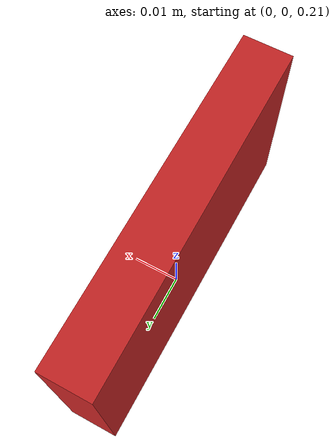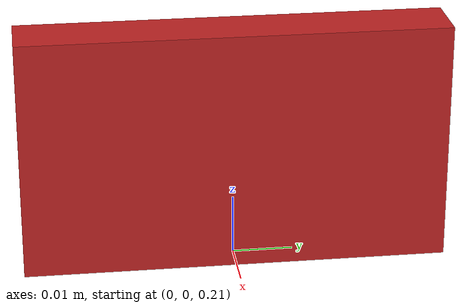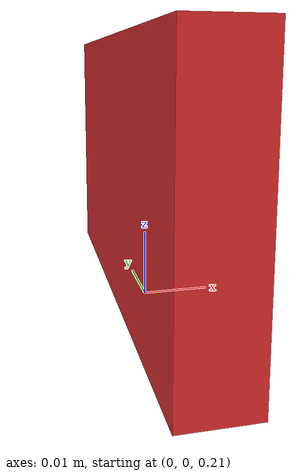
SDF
<?xml version='1.0'?>
<sdf version='1.7'>
  <model name='cameradown'>
      <include>
        <uri>model://camera_sensor</uri>
        <pose>
          0.0 0.0 0.23
          0.0 0.0 0.0
        </pose>
      </include>
    <static>0</static>
    <allow_auto_disable>1</allow_auto_disable>
    <plugin name="linefollow_controller" filename="liblinefollow_control_plugin.so"></plugin>
  </model>
</sdf>

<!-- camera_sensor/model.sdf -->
<sdf version="1.6">
  <model name="camera_sensor">
    <pose>0 0 0.02 0 0 0</pose>
    <link name="link">
      <inertial>
        <mass>0.1</mass>
      </inertial>

      <visual name="visual">
        <geometry>
          <box>
            <size>0.01 0.07 0.04</size>
          </box>
        </geometry>
        <material>
          <script>
            <uri>file://media/materials/scripts/gazebo.material</uri>
            <name>Gazebo/Red</name>
          </script>
        </material>
      </visual>

      <collision name="collision">
        <pose>0 0 -0.0145 0 0 0</pose>
        <geometry>
          <box>
            <size>0.01 0.07 0.04</size>
          </box>
        </geometry>
      </collision>

      <sensor name='camera' type='camera'>
        <camera>
          <horizontal_fov>1.3962634</horizontal_fov>
          <image>
            <width>800</width>
            <height>800</height>
          </image>
          <clip>
            <near>0.02</near>
            <far>300</far>
          </clip>
        </camera>
        <always_on>1</always_on>
        <update_rate>10</update_rate>
        <visualize>1</visualize>

        <plugin name="camera_controller" filename="libCameraPlugin.so"></plugin>
      </sensor>

    </link>
  </model>
</sdf>
